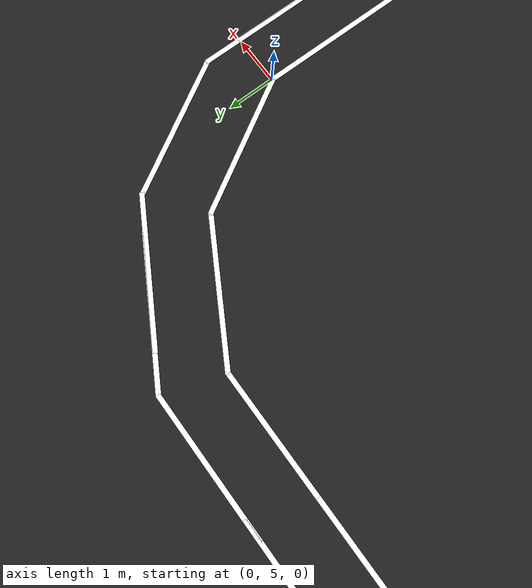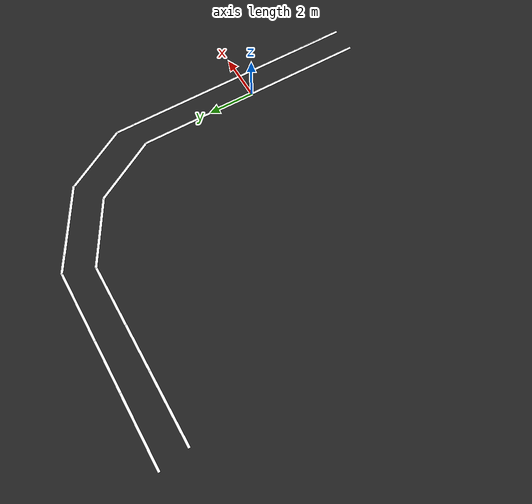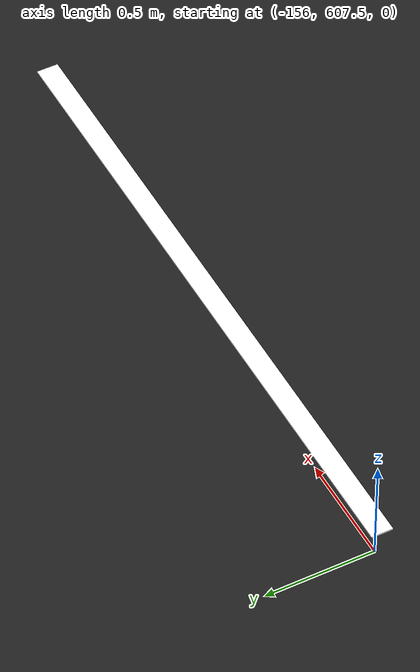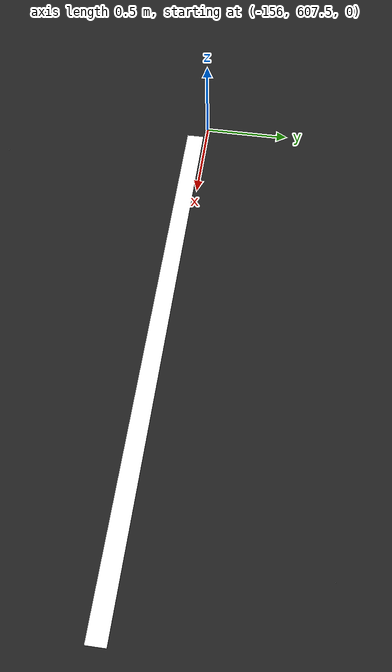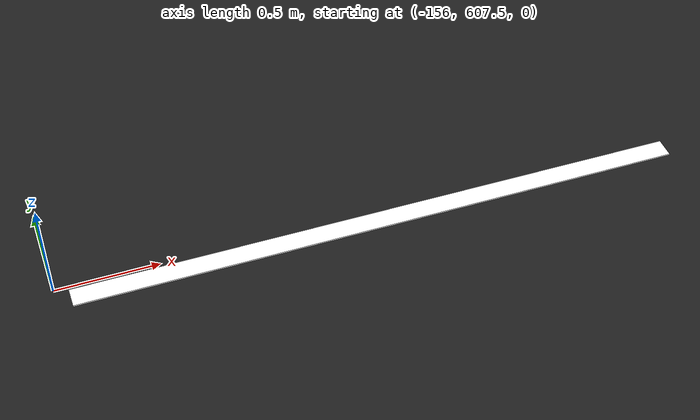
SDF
<sdf version="1.7">
 <world name="default">
  <scene><ambient>1 1 1 1</ambient><background>0 0 0 1</background><shadows>1</shadows></scene>
  <model name="ground_plane">
   <static>1</static>
   <link name="link">
    <collision name="collision">
     <geometry><plane><normal>0 0 1</normal><size>1 1</size></plane></geometry>
    </collision>
    <visual name="visual">
     <geometry><plane><normal>0 0 1</normal><size>1 1</size></plane></geometry>
     <material>
      <script><uri>file://media/materials/scripts/gazebo.material</uri><name>Gazebo/Black</name></script>
     </material>
    </visual>
   </link>
  </model>
  <model name="straight1">
   <static>1</static>
   <link name="link">
    <visual name="visual">
     <geometry><box><size>0.1 10 0.01</size></box></geometry>
     <material><ambient>1 1 1 1</ambient></material>
    </visual>
   </link>
  </model>
  <model name="curve2">
   <pose>-5.75867 0.773396 0 0 -0 0</pose>
   <static>1</static>
   <link name="link">
    <visual name="visual">
     <geometry><box><size>0.1 3 0.01</size></box></geometry>
     <material><ambient>1 1 1 1</ambient></material>
    </visual>
    <pose>3 7.5 0 0 -0 1.0472</pose>
   </link>
  </model>
  <model name="curve3">
   <pose>-10.0351 -0.990502 0 0 -0 0</pose>
   <static>1</static>
   <link name="link">
    <visual name="visual">
     <geometry><box><size>0.1 3 0.01</size></box></geometry>
     <material><ambient>1 1 1 1</ambient></material>
    </visual>
    <pose>4.5 10 0 0 -0 1.5708</pose>
   </link>
  </model>
  <gravity>0 0 -9.8</gravity>
  <magnetic_field>6e-06 2.3e-05 -4.2e-05</magnetic_field>
  <atmosphere type="adiabatic"/>
  <physics type="ode">
   <max_step_size>0.001</max_step_size>
   <real_time_factor>1</real_time_factor>
   <real_time_update_rate>1000</real_time_update_rate>
  </physics>
  <audio><device>default</device></audio>
  <spherical_coordinates>
   <surface_model>EARTH_WGS84</surface_model>
   <latitude_deg>0</latitude_deg>
   <longitude_deg>0</longitude_deg>
   <elevation>0</elevation>
   <heading_deg>0</heading_deg>
  </spherical_coordinates>
  <model name="curve1_0">
   <link name="link">
    <pose>-0.729404 6.21629 0 0 -0 0.523599</pose>
    <visual name="visual">
     <geometry><box><size>0.1 3 0.01</size></box></geometry>
     <material>
      <ambient>1 1 1 1</ambient>
      <shader type="pixel"/>
      <script><name>ModelPreview_1::link::visual_MATERIAL_</name><uri>__default__</uri></script>
     </material>
    </visual>
   </link>
   <static>1</static>
   <pose>-0.016473 0.046605 0 0 -0 0</pose>
  </model>
  <model name="straight1_clone">
   <static>1</static>
   <link name="link">
    <visual name="visual">
     <geometry><box><size>0.1 10 0.01</size></box></geometry>
     <material><ambient>1 1 1 1</ambient></material>
    </visual>
   </link>
   <pose>1.06829 0.020069 0 0 -0 0</pose>
  </model>
  <model name="straight1_clone_0">
   <static>1</static>
   <link name="link">
    <visual name="visual">
     <geometry><box><size>0.1 10 0.01</size></box></geometry>
     <material><ambient>1 1 1 1</ambient></material>
    </visual>
   </link>
   <pose>1.06502 0.809211 0 0 -0 0</pose>
  </model>
  <model name="curve1_0_clone">
   <link name="link">
    <pose>-0.729404 6.21629 0 0 -0 0.523599</pose>
    <visual name="visual">
     <geometry><box><size>0.1 3 0.01</size></box></geometry>
     <material>
      <ambient>1 1 1 1</ambient>
      <shader type="pixel"/>
      <script><name>ModelPreview_1::link::visual_MATERIAL_</name><uri>__default__</uri></script>
     </material>
    </visual>
   </link>
   <static>1</static>
   <pose>1.04827 0.850041 0 0 -0 0</pose>
  </model>
  <model name="curve2_clone">
   <static>1</static>
   <link name="link">
    <visual name="visual">
     <geometry><box><size>0.1 3 0.01</size></box></geometry>
     <material><ambient>1 1 1 1</ambient></material>
    </visual>
    <pose>3 7.5 0 0 -0 1.0472</pose>
   </link>
   <pose>-4.6866 1.58877 0 0 -0 0</pose>
  </model>
  <model name="curve3_clone">
   <static>1</static>
   <link name="link">
    <visual name="visual">
     <geometry><box><size>0.1 3 0.01</size></box></geometry>
     <material><ambient>1 1 1 1</ambient></material>
    </visual>
    <pose>4.5 10 0 0 -0 1.5708</pose>
   </link>
   <pose>-9.61514 0.215843 0 0 -0 0</pose>
  </model>
  <model name="curve2_clone_clone">
   <static>1</static>
   <link name="link">
    <visual name="visual">
     <geometry><box><size>0.1 3 0.01</size></box></geometry>
     <material><ambient>1 1 1 1</ambient></material>
    </visual>
    <pose>3 7.5 0 0 -0 1.0472</pose>
   </link>
   <pose>-5.34918 1.97707 0 0 -0 0</pose>
  </model>
  <model name="curve3_clone_clone">
   <static>1</static>
   <link name="link">
    <visual name="visual">
     <geometry><box><size>0.1 3 0.01</size></box></geometry>
     <material><ambient>1 1 1 1</ambient></material>
    </visual>
    <pose>4.5 10 0 0 -0 1.5708</pose>
   </link>
   <pose>-12.1641 0.214275 0 0 -0 0</pose>
  </model>
  <model name="curve3_clone_clone_0">
   <static>1</static>
   <link name="link">
    <visual name="visual">
     <geometry><box><size>0.1 3 0.01</size></box></geometry>
     <material><ambient>1 1 1 1</ambient></material>
    </visual>
    <pose>4.5 10 0 0 -0 1.5708</pose>
   </link>
   <pose>-12.6227 -0.991917 0 0 -0 0</pose>
  </model>
  <model name="curve3_clone_clone_1">
   <static>1</static>
   <link name="link">
    <visual name="visual">
     <geometry><box><size>0.1 3 0.01</size></box></geometry>
     <material><ambient>1 1 1 1</ambient></material>
    </visual>
    <pose>4.5 10 0 0 -0 1.5708</pose>
   </link>
   <pose>-158.933 597.429 0 0 -0 0</pose>
  </model>
  <model name="curve3_clone_clone_2">
   <static>1</static>
   <link name="link">
    <visual name="visual">
     <geometry><box><size>0.1 3 0.01</size></box></geometry>
     <material><ambient>1 1 1 1</ambient></material>
    </visual>
    <pose>4.5 10 0 0 -0 1.5708</pose>
   </link>
   <pose>-14.5591 -0.98966 0 0 -0 0</pose>
  </model>
  <model name="curve3_clone_clone_3">
   <static>1</static>
   <link name="link">
    <visual name="visual">
     <geometry><box><size>0.1 3 0.01</size></box></geometry>
     <material><ambient>1 1 1 1</ambient></material>
    </visual>
    <pose>4.5 10 0 0 -0 1.5708</pose>
   </link>
   <pose>-14.7447 0.218379 0 0 -0 0</pose>
  </model>
 </world>
</sdf>
